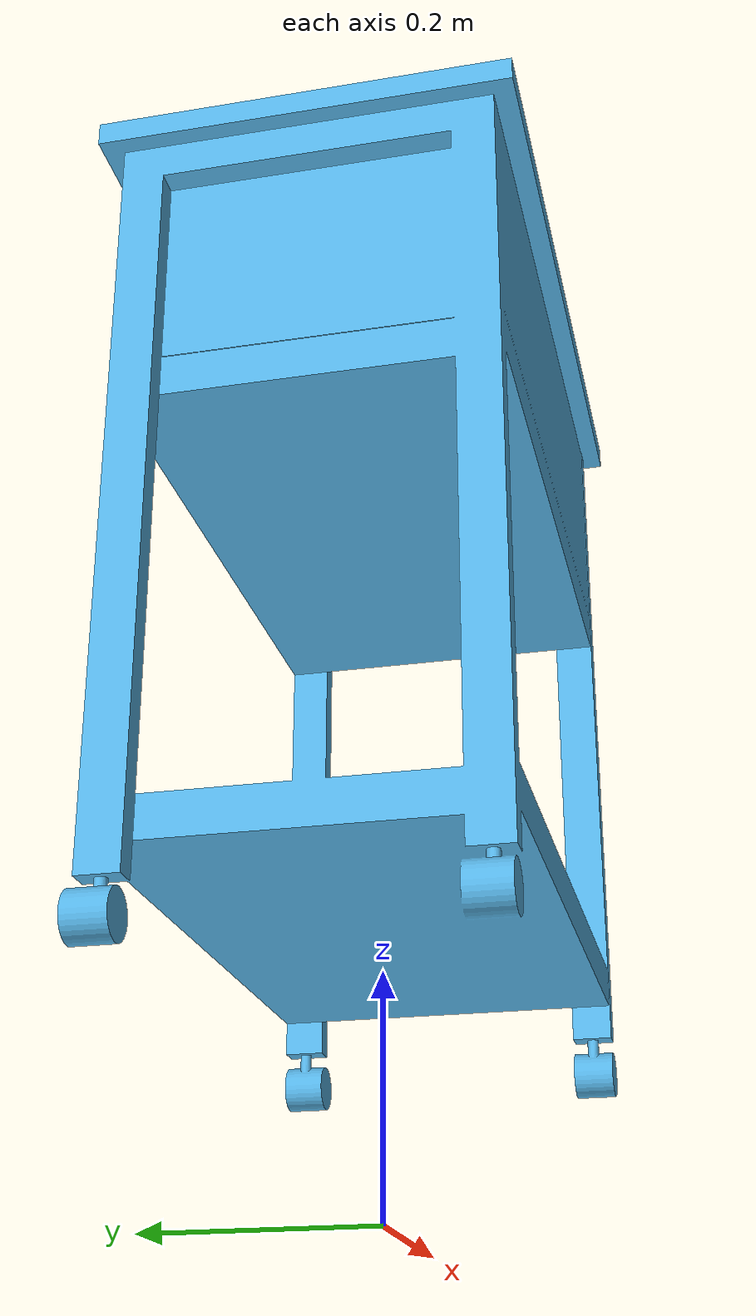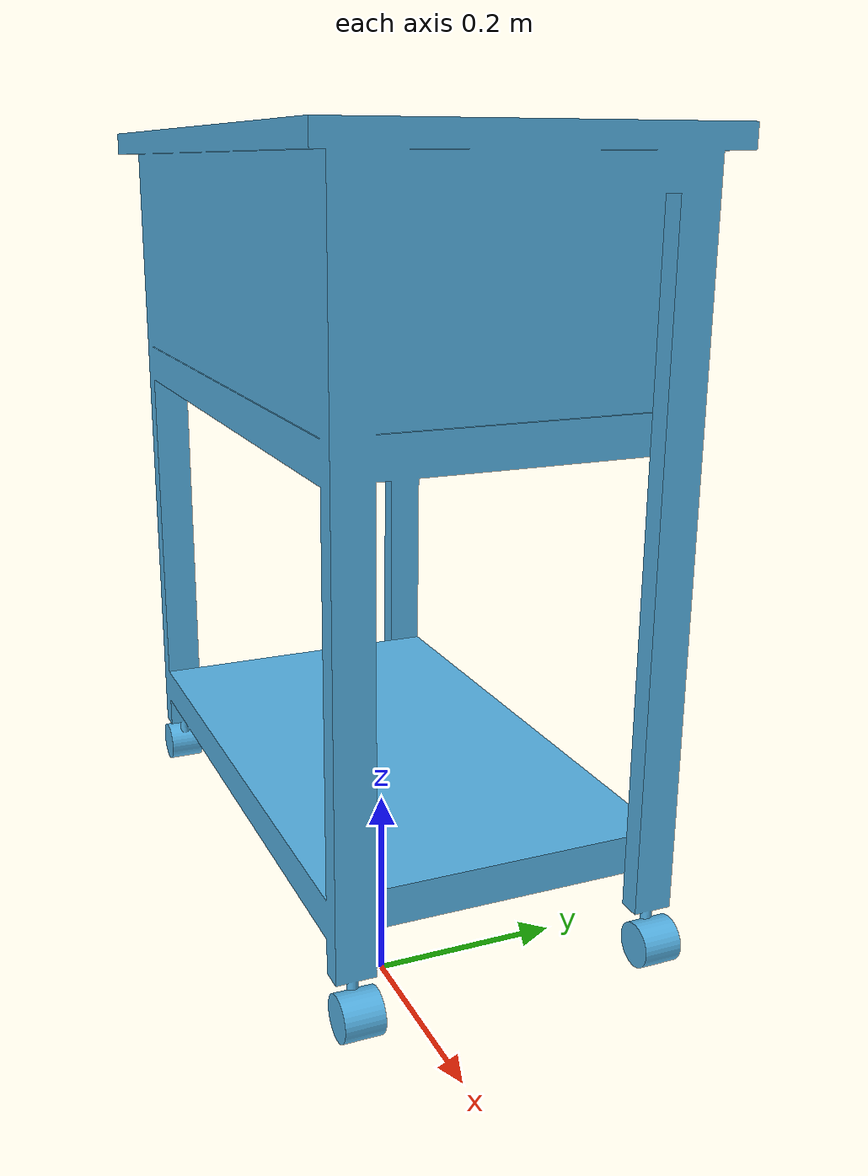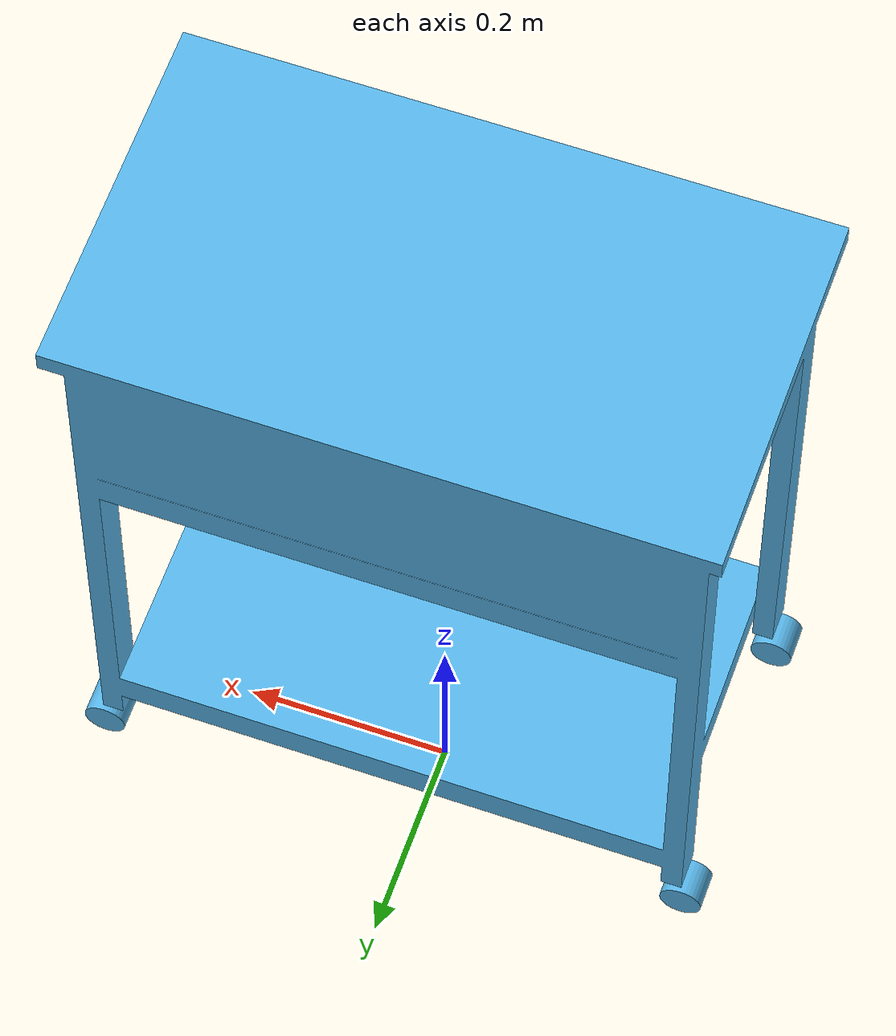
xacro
<?xml version="1.0"?>
<!-- Environment of B-Sen Project room -->
<robot name="objects" xmlns:xacro="http://www.ros.org/wiki/xacro">

  <!-- Constants for robot dimensions -->
  <xacro:property name="PI" value="3.1415926535897931"/>

  <!-- Import all Gazebo-customization elements, including Gazebo colors -->
  <xacro:include filename="$(find environment_description)/urdf/environment.gazebo" />
  <!-- Import Rviz colors -->
  <xacro:include filename="$(find environment_description)/urdf/materials.xacro" />

  <!-- Used for fixing robot to Gazebo 'base_link' -->
  <link name="world"/>

  <!--  Movable object  -->
  <link name="wagon">
    <visual>
      <geometry>
        <mesh filename="package://environmental_model/model/wagon.dae"/>
      </geometry>
      <origin xyz="0. 0. 0.5" rpy="0 0 1.57079633"/>
    </visual>
  </link>

  <!-- ========== Movable object ========== -->
  <link name="wagon_x_link"/>
  <joint name="wagon_x_joint" type="prismatic">
    <parent link="world"/>
    <child link="wagon_x_link"/>
    <origin xyz="0 0 0" rpy="0 0 0"/>
    <limit effort="1000.0" lower="0." upper="15." velocity="0.5"/>
  </joint>

  <link name="wagon_y_link"/>
  <joint name="wagon_y_joint" type="prismatic">
    <parent link="wagon_x_link"/>
    <child link="wagon_y_link"/>
    <origin xyz="0 0 0" rpy="0 0 1.57079633"/>
    <limit effort="1000.0" lower="0." upper="7." velocity="0.5"/>
  </joint>

  <joint name="wagon_theta_joint" type="continuous">
    <parent link="wagon_y_link"/>
    <child link="wagon"/>
    <origin xyz="0 0 0" rpy="0 0 0"/>
    <axis xyz="0 0 1"/>
  </joint>

</robot>

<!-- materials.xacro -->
<robot>

  <material name="black">
    <color rgba="0.0 0.0 0.0 1.0"/>
  </material>

  <material name="blue">
    <color rgba="0.0 0.0 0.8 1.0"/>
  </material>

  <material name="green">
    <color rgba="0.0 0.8 0.0 1.0"/>
  </material>

  <material name="grey">
    <color rgba="0.2 0.2 0.2 1.0"/>
  </material>

  <material name="orange">
    <color rgba="${255/255} ${108/255} ${10/255} 1.0"/>
  </material>

  <material name="brown">
    <color rgba="${222/255} ${207/255} ${195/255} 1.0"/>
  </material>

  <material name="red">
    <color rgba="0.8 0.0 0.0 1.0"/>
  </material>

  <material name="white">
    <color rgba="1.0 1.0 1.0 1.0"/>
  </material>

  <material name="beige">
    <color rgba="0.98 0.915 0.72 1.0"/>
  </material>

  <material name="temp">
    <color rgba="0.5 0.5 0.8 1.0"/>
  </material>

</robot>
